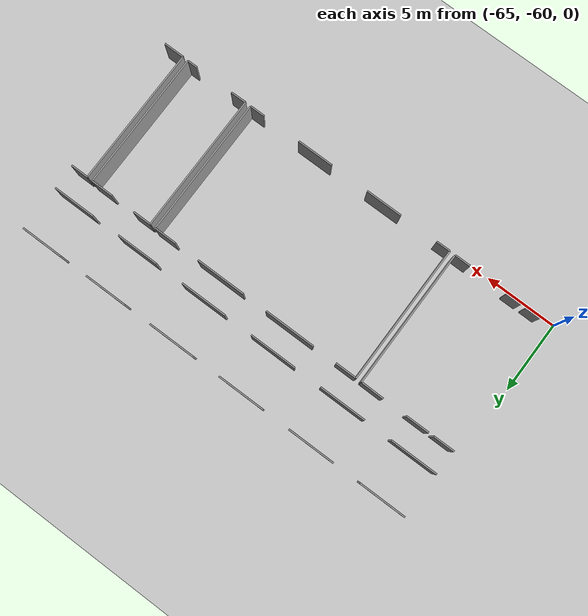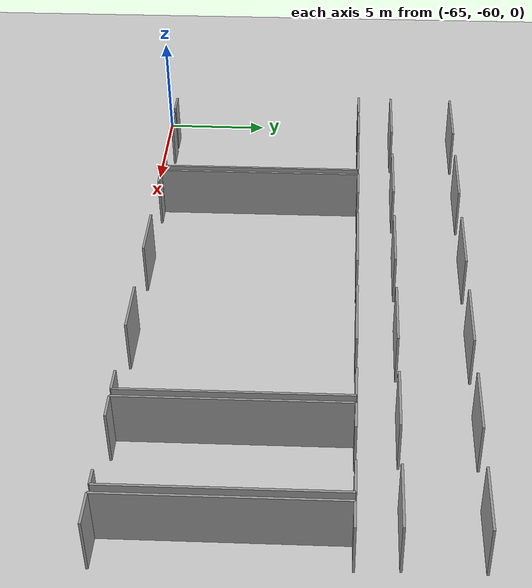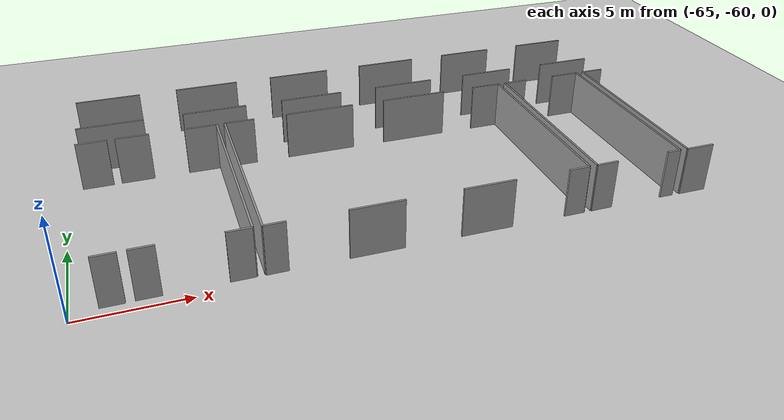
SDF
<sdf version="1.6">
 <world name="default">
  <model name="ground_plane">
   <static>1</static>
   <link name="link">
    <collision name="collision">
     <geometry><plane><normal>0 0 1</normal><size>100 100</size></plane></geometry>
     <surface><friction><ode><mu>100</mu><mu2>50</mu2></ode></friction></surface>
    </collision>
    <visual name="visual">
     <cast_shadows>0</cast_shadows>
     <geometry><plane><normal>0 0 1</normal><size>100 100</size></plane></geometry>
     <material>
      <script><uri>file://media/materials/scripts/gazebo.material</uri><name>Gazebo/Grey</name></script>
     </material>
    </visual>
   </link>
  </model>
  <model name="0510045922_A-40">
   <static>1</static>
   <link name="Wall_1092">
    <collision name="Wall_1092_Collision">
     <geometry><box><size>9.61809747728 0.1 2.5</size></box></geometry>
     <pose>4.80904873864 0 1.25 0 0 0</pose>
    </collision>
    <visual name="Wall_1092_Visual">
     <pose>4.80904873864 0 1.25 0 0 0</pose>
     <geometry><box><size>9.61809747728 0.1 2.5</size></box></geometry>
     <material>
      <script><uri>file://media/materials/scripts/gazebo.material</uri><name>Gazebo/Grey</name></script>
      <ambient>1 1 1 1</ambient>
     </material>
    </visual>
    <pose>97.623486052 -160.624108788 0 0 0 1.57079632679</pose>
   </link>
   <link name="Wall_1093">
    <collision name="Wall_1093_Collision">
     <geometry><box><size>1.2225964288 0.1 2.5</size></box></geometry>
     <pose>0.611298214399 0 1.25 0 0 0</pose>
    </collision>
    <visual name="Wall_1093_Visual">
     <pose>0.611298214399 0 1.25 0 0 0</pose>
     <geometry><box><size>1.2225964288 0.1 2.5</size></box></geometry>
     <material>
      <script><uri>file://media/materials/scripts/gazebo.material</uri><name>Gazebo/Grey</name></script>
      <ambient>1 1 1 1</ambient>
     </material>
    </visual>
    <pose>97.623486052 -151.006011311 0 0 0 0.0</pose>
   </link>
   <link name="Wall_1099">
    <collision name="Wall_1099_Collision">
     <geometry><box><size>1.43153223151 0.1 2.5</size></box></geometry>
     <pose>0.715766115755 0 1.25 0 0 0</pose>
    </collision>
    <visual name="Wall_1099_Visual">
     <pose>0.715766115755 0 1.25 0 0 0</pose>
     <geometry><box><size>1.43153223151 0.1 2.5</size></box></geometry>
     <material>
      <script><uri>file://media/materials/scripts/gazebo.material</uri><name>Gazebo/Grey</name></script>
      <ambient>1 1 1 1</ambient>
     </material>
    </visual>
    <pose>99.0550168393 -160.622075364 0 0 0 -3.1401722</pose>
   </link>
   <link name="Wall_1100">
    <collision name="Wall_1100_Collision">
     <geometry><box><size>9.62216432611 0.1 2.5</size></box></geometry>
     <pose>4.81108216306 0 1.25 0 0 0</pose>
    </collision>
    <visual name="Wall_1100_Visual">
     <pose>4.81108216306 0 1.25 0 0 0</pose>
     <geometry><box><size>9.62216432611 0.1 2.5</size></box></geometry>
     <material>
      <script><uri>file://media/materials/scripts/gazebo.material</uri><name>Gazebo/Grey</name></script>
      <ambient>1 1 1 1</ambient>
     </material>
    </visual>
    <pose>92.7208997903 -160.619025227 0 0 0 1.57079632679</pose>
   </link>
   <link name="Wall_1101">
    <collision name="Wall_1101_Collision">
     <geometry><box><size>1.28054902459 0.1 2.5</size></box></geometry>
     <pose>0.640274512296 0 1.25 0 0 0</pose>
    </collision>
    <visual name="Wall_1101_Visual">
     <pose>0.640274512296 0 1.25 0 0 0</pose>
     <geometry><box><size>1.28054902459 0.1 2.5</size></box></geometry>
     <material>
      <script><uri>file://media/materials/scripts/gazebo.material</uri><name>Gazebo/Grey</name></script>
      <ambient>1 1 1 1</ambient>
     </material>
    </visual>
    <pose>92.7208997903 -150.996860901 0 0 0 0.0</pose>
   </link>
   <link name="Wall_1102">
    <collision name="Wall_1102_Collision">
     <geometry><box><size>1.54387748618 0.1 2.5</size></box></geometry>
     <pose>0.77193874309 0 1.25 0 0 0</pose>
    </collision>
    <visual name="Wall_1102_Visual">
     <pose>0.77193874309 0 1.25 0 0 0</pose>
     <geometry><box><size>1.54387748618 0.1 2.5</size></box></geometry>
     <material>
      <script><uri>file://media/materials/scripts/gazebo.material</uri><name>Gazebo/Grey</name></script>
      <ambient>1 1 1 1</ambient>
     </material>
    </visual>
    <pose>95.6828366271 -150.996860901 0 0 0 0.0</pose>
   </link>
   <link name="Wall_1103">
    <collision name="Wall_1103_Collision">
     <geometry><box><size>9.6064052869 0.1 2.5</size></box></geometry>
     <pose>4.80320264345 0 1.25 0 0 0</pose>
    </collision>
    <visual name="Wall_1103_Visual">
     <pose>4.80320264345 0 1.25 0 0 0</pose>
     <geometry><box><size>9.6064052869 0.1 2.5</size></box></geometry>
     <material>
      <script><uri>file://media/materials/scripts/gazebo.material</uri><name>Gazebo/Grey</name></script>
      <ambient>1 1 1 1</ambient>
     </material>
    </visual>
    <pose>97.2267141132 -150.996860901 0 0 0 -1.57079632679</pose>
   </link>
   <link name="Wall_1104">
    <collision name="Wall_1104_Collision">
     <geometry><box><size>0.695685327572 0.1 2.5</size></box></geometry>
     <pose>0.347842663786 0 1.25 0 0 0</pose>
    </collision>
    <visual name="Wall_1104_Visual">
     <pose>0.347842663786 0 1.25 0 0 0</pose>
     <geometry><box><size>0.695685327572 0.1 2.5</size></box></geometry>
     <material>
      <script><uri>file://media/materials/scripts/gazebo.material</uri><name>Gazebo/Grey</name></script>
      <ambient>1 1 1 1</ambient>
     </material>
    </visual>
    <pose>97.2267141132 -160.603266188 0 0 0 3.14159265359</pose>
   </link>
   <link name="Wall_1105">
    <collision name="Wall_1105_Collision">
     <geometry><box><size>1.10044963072 0.1 2.5</size></box></geometry>
     <pose>0.550224815362 0 1.25 0 0 0</pose>
    </collision>
    <visual name="Wall_1105_Visual">
     <pose>0.550224815362 0 1.25 0 0 0</pose>
     <geometry><box><size>1.10044963072 0.1 2.5</size></box></geometry>
     <material>
      <script><uri>file://media/materials/scripts/gazebo.material</uri><name>Gazebo/Grey</name></script>
      <ambient>1 1 1 1</ambient>
     </material>
    </visual>
    <pose>93.8212365762 -160.603266188 0 0 0 -3.12727161839</pose>
   </link>
   <link name="Wall_1106">
    <collision name="Wall_1106_Collision">
     <geometry><box><size>9.63156891402 0.1 2.5</size></box></geometry>
     <pose>4.81578445701 0 1.25 0 0 0</pose>
    </collision>
    <visual name="Wall_1106_Visual">
     <pose>4.81578445701 0 1.25 0 0 0</pose>
     <geometry><box><size>9.63156891402 0.1 2.5</size></box></geometry>
     <material>
      <script><uri>file://media/materials/scripts/gazebo.material</uri><name>Gazebo/Grey</name></script>
      <ambient>1 1 1 1</ambient>
     </material>
    </visual>
    <pose>77.1130965241 -160.622075364 0 0 0 1.57079632679</pose>
   </link>
   <link name="Wall_1107">
    <collision name="Wall_1107_Collision">
     <geometry><box><size>1.49456694414 0.1 2.5</size></box></geometry>
     <pose>0.747283472072 0 1.25 0 0 0</pose>
    </collision>
    <visual name="Wall_1107_Visual">
     <pose>0.747283472072 0 1.25 0 0 0</pose>
     <geometry><box><size>1.49456694414 0.1 2.5</size></box></geometry>
     <material>
      <script><uri>file://media/materials/scripts/gazebo.material</uri><name>Gazebo/Grey</name></script>
      <ambient>1 1 1 1</ambient>
     </material>
    </visual>
    <pose>77.1130965241 -150.99050645 0 0 0 0.0</pose>
   </link>
   <link name="Wall_1108">
    <collision name="Wall_1108_Collision">
     <geometry><box><size>3.57069327064 0.1 2.5</size></box></geometry>
     <pose>1.78534663532 0 1.25 0 0 0</pose>
    </collision>
    <visual name="Wall_1108_Visual">
     <pose>1.78534663532 0 1.25 0 0 0</pose>
     <geometry><box><size>3.57069327064 0.1 2.5</size></box></geometry>
     <material>
      <script><uri>file://media/materials/scripts/gazebo.material</uri><name>Gazebo/Grey</name></script>
      <ambient>1 1 1 1</ambient>
     </material>
    </visual>
    <pose>80.2903221707 -150.99050645 0 0 0 0.0</pose>
   </link>
   <link name="Wall_1109">
    <collision name="Wall_1109_Collision">
     <geometry><box><size>3.45910910593 0.1 2.5</size></box></geometry>
     <pose>1.72955455296 0 1.25 0 0 0</pose>
    </collision>
    <visual name="Wall_1109_Visual">
     <pose>1.72955455296 0 1.25 0 0 0</pose>
     <geometry><box><size>3.45910910593 0.1 2.5</size></box></geometry>
     <material>
      <script><uri>file://media/materials/scripts/gazebo.material</uri><name>Gazebo/Grey</name></script>
      <ambient>1 1 1 1</ambient>
     </material>
    </visual>
    <pose>85.5762089344 -150.99050645 0 0 0 0.0</pose>
   </link>
   <link name="Wall_1110">
    <collision name="Wall_1110_Collision">
     <geometry><box><size>1.55175700578 0.1 2.5</size></box></geometry>
     <pose>0.775878502891 0 1.25 0 0 0</pose>
    </collision>
    <visual name="Wall_1110_Visual">
     <pose>0.775878502891 0 1.25 0 0 0</pose>
     <geometry><box><size>1.55175700578 0.1 2.5</size></box></geometry>
     <material>
      <script><uri>file://media/materials/scripts/gazebo.material</uri><name>Gazebo/Grey</name></script>
      <ambient>1 1 1 1</ambient>
     </material>
    </visual>
    <pose>90.7721166677 -150.99050645 0 0 0 0.0</pose>
   </link>
   <link name="Wall_1111">
    <collision name="Wall_1111_Collision">
     <geometry><box><size>9.62368939442 0.1 2.5</size></box></geometry>
     <pose>4.81184469721 0 1.25 0 0 0</pose>
    </collision>
    <visual name="Wall_1111_Visual">
     <pose>4.81184469721 0 1.25 0 0 0</pose>
     <geometry><box><size>9.62368939442 0.1 2.5</size></box></geometry>
     <material>
      <script><uri>file://media/materials/scripts/gazebo.material</uri><name>Gazebo/Grey</name></script>
      <ambient>1 1 1 1</ambient>
     </material>
    </visual>
    <pose>92.3238736735 -150.99050645 0 0 0 -1.57079632679</pose>
   </link>
   <link name="Wall_1112">
    <collision name="Wall_1112_Collision">
     <geometry><box><size>1.02942110949 0.1 2.5</size></box></geometry>
     <pose>0.514710554744 0 1.25 0 0 0</pose>
    </collision>
    <visual name="Wall_1112_Visual">
     <pose>0.514710554744 0 1.25 0 0 0</pose>
     <geometry><box><size>1.02942110949 0.1 2.5</size></box></geometry>
     <material>
      <script><uri>file://media/materials/scripts/gazebo.material</uri><name>Gazebo/Grey</name></script>
      <ambient>1 1 1 1</ambient>
     </material>
    </visual>
    <pose>92.3238736735 -160.614195844 0 0 0 3.14159265359</pose>
   </link>
   <link name="Wall_1113">
    <collision name="Wall_1113_Collision">
     <geometry><box><size>2.5341551757 0.1 2.5</size></box></geometry>
     <pose>1.26707758785 0 1.25 0 0 0</pose>
    </collision>
    <visual name="Wall_1113_Visual">
     <pose>1.26707758785 0 1.25 0 0 0</pose>
     <geometry><box><size>2.5341551757 0.1 2.5</size></box></geometry>
     <material>
      <script><uri>file://media/materials/scripts/gazebo.material</uri><name>Gazebo/Grey</name></script>
      <ambient>1 1 1 1</ambient>
     </material>
    </visual>
    <pose>88.5938107644 -160.614195844 0 0 0 3.14159265359</pose>
   </link>
   <link name="Wall_1114">
    <collision name="Wall_1114_Collision">
     <geometry><box><size>2.55093092711 0.1 2.5</size></box></geometry>
     <pose>1.27546546356 0 1.25 0 0 0</pose>
    </collision>
    <visual name="Wall_1114_Visual">
     <pose>1.27546546356 0 1.25 0 0 0</pose>
     <geometry><box><size>2.55093092711 0.1 2.5</size></box></geometry>
     <material>
      <script><uri>file://media/materials/scripts/gazebo.material</uri><name>Gazebo/Grey</name></script>
      <ambient>1 1 1 1</ambient>
     </material>
    </visual>
    <pose>83.3508800915 -160.614195844 0 0 0 3.14159265359</pose>
   </link>
   <link name="Wall_1115">
    <collision name="Wall_1115_Collision">
     <geometry><box><size>0.994629927911 0.1 2.5</size></box></geometry>
     <pose>0.497314963955 0 1.25 0 0 0</pose>
    </collision>
    <visual name="Wall_1115_Visual">
     <pose>0.497314963955 0 1.25 0 0 0</pose>
     <geometry><box><size>0.994629927911 0.1 2.5</size></box></geometry>
     <material>
      <script><uri>file://media/materials/scripts/gazebo.material</uri><name>Gazebo/Grey</name></script>
      <ambient>1 1 1 1</ambient>
     </material>
    </visual>
    <pose>78.1076952405 -160.614195844 0 0 0 -3.13367050908</pose>
   </link>
   <link name="Wall_1116">
    <collision name="Wall_1116_Collision">
     <geometry><box><size>9.60665946496 0.1 2.5</size></box></geometry>
     <pose>4.80332973248 0 1.25 0 0 0</pose>
    </collision>
    <visual name="Wall_1116_Visual">
     <pose>4.80332973248 0 1.25 0 0 0</pose>
     <geometry><box><size>9.60665946496 0.1 2.5</size></box></geometry>
     <material>
      <script><uri>file://media/materials/scripts/gazebo.material</uri><name>Gazebo/Grey</name></script>
      <ambient>1 1 1 1</ambient>
     </material>
    </visual>
    <pose>76.7168329415 -151.00219864 0 0 0 -1.57079632679</pose>
   </link>
   <link name="Wall_1117">
    <collision name="Wall_1117_Collision">
     <geometry><box><size>1.11609582513 0.1 2.5</size></box></geometry>
     <pose>0.558047912563 0 1.25 0 0 0</pose>
    </collision>
    <visual name="Wall_1117_Visual">
     <pose>0.558047912563 0 1.25 0 0 0</pose>
     <geometry><box><size>1.11609582513 0.1 2.5</size></box></geometry>
     <material>
      <script><uri>file://media/materials/scripts/gazebo.material</uri><name>Gazebo/Grey</name></script>
      <ambient>1 1 1 1</ambient>
     </material>
    </visual>
    <pose>76.7168329415 -160.608858105 0 0 0 3.14159265359</pose>
   </link>
   <link name="Wall_1118">
    <collision name="Wall_1118_Collision">
     <geometry><box><size>1.08711952723 0.1 2.5</size></box></geometry>
     <pose>0.543559763614 0 1.25 0 0 0</pose>
    </collision>
    <visual name="Wall_1118_Visual">
     <pose>0.543559763614 0 1.25 0 0 0</pose>
     <geometry><box><size>1.08711952723 0.1 2.5</size></box></geometry>
     <material>
      <script><uri>file://media/materials/scripts/gazebo.material</uri><name>Gazebo/Grey</name></script>
      <ambient>1 1 1 1</ambient>
     </material>
    </visual>
    <pose>72.847226282 -160.608858105 0 0 0 3.14159265359</pose>
   </link>
   <link name="Wall_1119">
    <collision name="Wall_1119_Collision">
     <geometry><box><size>1.62089343585 0.1 2.5</size></box></geometry>
     <pose>0.810446717926 0 1.25 0 0 0</pose>
    </collision>
    <visual name="Wall_1119_Visual">
     <pose>0.810446717926 0 1.25 0 0 0</pose>
     <geometry><box><size>1.62089343585 0.1 2.5</size></box></geometry>
     <material>
      <script><uri>file://media/materials/scripts/gazebo.material</uri><name>Gazebo/Grey</name></script>
      <ambient>1 1 1 1</ambient>
     </material>
    </visual>
    <pose>71.7601067548 -150.984151998 0 0 0 0.0</pose>
   </link>
   <link name="Wall_1120">
    <collision name="Wall_1120_Collision">
     <geometry><box><size>1.62073973395 0.1 2.5</size></box></geometry>
     <pose>0.810369866974 0 1.25 0 0 0</pose>
    </collision>
    <visual name="Wall_1120_Visual">
     <pose>0.810369866974 0 1.25 0 0 0</pose>
     <geometry><box><size>1.62073973395 0.1 2.5</size></box></geometry>
     <material>
      <script><uri>file://media/materials/scripts/gazebo.material</uri><name>Gazebo/Grey</name></script>
      <ambient>1 1 1 1</ambient>
     </material>
    </visual>
    <pose>75.0961936837 -150.984151998 0 0 0 -0.0111350479239</pose>
   </link>
   <link name="Wall_1123">
    <collision name="Wall_1123_Collision">
     <geometry><box><size>1.47906208299 0.1 2.5</size></box></geometry>
     <pose>0.739531041495 0 1.25 0 0 0</pose>
    </collision>
    <visual name="Wall_1123_Visual">
     <pose>0.739531041495 0 1.25 0 0 0</pose>
     <geometry><box><size>1.47906208299 0.1 2.5</size></box></geometry>
     <material>
      <script><uri>file://media/materials/scripts/gazebo.material</uri><name>Gazebo/Grey</name></script>
      <ambient>1 1 1 1</ambient>
     </material>
    </visual>
    <pose>69.9066404016 -150.993302408 0 0 0 0.0</pose>
   </link>
   <link name="Wall_1124">
    <collision name="Wall_1124_Collision">
     <geometry><box><size>1.04162165597 0.1 2.5</size></box></geometry>
     <pose>0.520810827985 0 1.25 0 0 0</pose>
    </collision>
    <visual name="Wall_1124_Visual">
     <pose>0.520810827985 0 1.25 0 0 0</pose>
     <geometry><box><size>1.04162165597 0.1 2.5</size></box></geometry>
     <material>
      <script><uri>file://media/materials/scripts/gazebo.material</uri><name>Gazebo/Grey</name></script>
      <ambient>1 1 1 1</ambient>
     </material>
    </visual>
    <pose>71.3857024846 -160.626142213 0 0 0 3.14159265359</pose>
   </link>
   <link name="Wall_1148">
    <collision name="Wall_1148_Collision">
     <geometry><box><size>3.27737179895 0.1 2.5</size></box></geometry>
     <pose>1.63868589947 0 1.25 0 0 0</pose>
    </collision>
    <visual name="Wall_1148_Visual">
     <pose>1.63868589947 0 1.25 0 0 0</pose>
     <geometry><box><size>3.27737179895 0.1 2.5</size></box></geometry>
     <material>
      <script><uri>file://media/materials/scripts/gazebo.material</uri><name>Gazebo/Grey</name></script>
      <ambient>1 1 1 1</ambient>
     </material>
    </visual>
    <pose>70.007040732 -146.16722374 0 0 0 0.0</pose>
   </link>
   <link name="Wall_1149">
    <collision name="Wall_1149_Collision">
     <geometry><box><size>3.30914405541 0.1 2.5</size></box></geometry>
     <pose>1.65457202771 0 1.25 0 0 0</pose>
    </collision>
    <visual name="Wall_1149_Visual">
     <pose>1.65457202771 0 1.25 0 0 0</pose>
     <geometry><box><size>3.30914405541 0.1 2.5</size></box></geometry>
     <material>
      <script><uri>file://media/materials/scripts/gazebo.material</uri><name>Gazebo/Grey</name></script>
      <ambient>1 1 1 1</ambient>
     </material>
    </visual>
    <pose>75.2237910656 -146.16722374 0 0 0 0.0</pose>
   </link>
   <link name="Wall_1150">
    <collision name="Wall_1150_Collision">
     <geometry><box><size>3.3002478236 0.1 2.5</size></box></geometry>
     <pose>1.6501239118 0 1.25 0 0 0</pose>
    </collision>
    <visual name="Wall_1150_Visual">
     <pose>1.6501239118 0 1.25 0 0 0</pose>
     <geometry><box><size>3.3002478236 0.1 2.5</size></box></geometry>
     <material>
      <script><uri>file://media/materials/scripts/gazebo.material</uri><name>Gazebo/Grey</name></script>
      <ambient>1 1 1 1</ambient>
     </material>
    </visual>
    <pose>80.4468958505 -146.16722374 0 0 0 0.0</pose>
   </link>
   <link name="Wall_1151">
    <collision name="Wall_1151_Collision">
     <geometry><box><size>3.26542543051 0.1 2.5</size></box></geometry>
     <pose>1.63271271526 0 1.25 0 0 0</pose>
    </collision>
    <visual name="Wall_1151_Visual">
     <pose>1.63271271526 0 1.25 0 0 0</pose>
     <geometry><box><size>3.26542543051 0.1 2.5</size></box></geometry>
     <material>
      <script><uri>file://media/materials/scripts/gazebo.material</uri><name>Gazebo/Grey</name></script>
      <ambient>1 1 1 1</ambient>
     </material>
    </visual>
    <pose>85.7091440554 -146.16722374 0 0 0 0.0</pose>
   </link>
   <link name="Wall_1152">
    <collision name="Wall_1152_Collision">
     <geometry><box><size>2.98659210777 0.1 2.5</size></box></geometry>
     <pose>1.49329605389 0 1.25 0 0 0</pose>
    </collision>
    <visual name="Wall_1152_Visual">
     <pose>1.49329605389 0 1.25 0 0 0</pose>
     <geometry><box><size>2.98659210777 0.1 2.5</size></box></geometry>
     <material>
      <script><uri>file://media/materials/scripts/gazebo.material</uri><name>Gazebo/Grey</name></script>
      <ambient>1 1 1 1</ambient>
     </material>
    </visual>
    <pose>90.8824299422 -146.16722374 0 0 0 0.0</pose>
   </link>
   <link name="Wall_1153">
    <collision name="Wall_1153_Collision">
     <geometry><box><size>2.93931499015 0.1 2.5</size></box></geometry>
     <pose>1.46965749508 0 1.25 0 0 0</pose>
    </collision>
    <visual name="Wall_1153_Visual">
     <pose>1.46965749508 0 1.25 0 0 0</pose>
     <geometry><box><size>2.93931499015 0.1 2.5</size></box></geometry>
     <material>
      <script><uri>file://media/materials/scripts/gazebo.material</uri><name>Gazebo/Grey</name></script>
      <ambient>1 1 1 1</ambient>
     </material>
    </visual>
    <pose>95.8366143484 -146.16722374 0 0 0 0.0</pose>
   </link>
   <link name="Wall_1164">
    <collision name="Wall_1164_Collision">
     <geometry><box><size>2.94821122196 0.1 2.5</size></box></geometry>
     <pose>1.47410561098 0 1.25 0 0 0</pose>
    </collision>
    <visual name="Wall_1164_Visual">
     <pose>1.47410561098 0 1.25 0 0 0</pose>
     <geometry><box><size>2.94821122196 0.1 2.5</size></box></geometry>
     <material>
      <script><uri>file://media/materials/scripts/gazebo.material</uri><name>Gazebo/Grey</name></script>
      <ambient>1 1 1 1</ambient>
     </material>
    </visual>
    <pose>98.7693207092 -149.293867955 0 0 0 3.14159265359</pose>
   </link>
   <link name="Wall_1165">
    <collision name="Wall_1165_Collision">
     <geometry><box><size>2.93067293639 0.1 2.5</size></box></geometry>
     <pose>1.4653364682 0 1.25 0 0 0</pose>
    </collision>
    <visual name="Wall_1165_Visual">
     <pose>1.4653364682 0 1.25 0 0 0</pose>
     <geometry><box><size>2.93067293639 0.1 2.5</size></box></geometry>
     <material>
      <script><uri>file://media/materials/scripts/gazebo.material</uri><name>Gazebo/Grey</name></script>
      <ambient>1 1 1 1</ambient>
     </material>
    </visual>
    <pose>93.8443667789 -149.293867955 0 0 0 3.14159265359</pose>
   </link>
   <link name="Wall_1166">
    <collision name="Wall_1166_Collision">
     <geometry><box><size>3.26593378662 0.1 2.5</size></box></geometry>
     <pose>1.63296689331 0 1.25 0 0 0</pose>
    </collision>
    <visual name="Wall_1166_Visual">
     <pose>1.63296689331 0 1.25 0 0 0</pose>
     <geometry><box><size>3.26593378662 0.1 2.5</size></box></geometry>
     <material>
      <script><uri>file://media/materials/scripts/gazebo.material</uri><name>Gazebo/Grey</name></script>
      <ambient>1 1 1 1</ambient>
     </material>
    </visual>
    <pose>88.9425430514 -149.293867955 0 0 0 3.14159265359</pose>
   </link>
   <link name="Wall_1167">
    <collision name="Wall_1167_Collision">
     <geometry><box><size>3.2860138527 0.1 2.5</size></box></geometry>
     <pose>1.64300692635 0 1.25 0 0 0</pose>
    </collision>
    <visual name="Wall_1167_Visual">
     <pose>1.64300692635 0 1.25 0 0 0</pose>
     <geometry><box><size>3.2860138527 0.1 2.5</size></box></geometry>
     <material>
      <script><uri>file://media/materials/scripts/gazebo.material</uri><name>Gazebo/Grey</name></script>
      <ambient>1 1 1 1</ambient>
     </material>
    </visual>
    <pose>83.6975789541 -149.293867955 0 0 0 3.14159265359</pose>
   </link>
   <link name="Wall_1168">
    <collision name="Wall_1168_Collision">
     <geometry><box><size>3.27838851115 0.1 2.5</size></box></geometry>
     <pose>1.63919425558 0 1.25 0 0 0</pose>
    </collision>
    <visual name="Wall_1168_Visual">
     <pose>1.63919425558 0 1.25 0 0 0</pose>
     <geometry><box><size>3.27838851115 0.1 2.5</size></box></geometry>
     <material>
      <script><uri>file://media/materials/scripts/gazebo.material</uri><name>Gazebo/Grey</name></script>
      <ambient>1 1 1 1</ambient>
     </material>
    </visual>
    <pose>78.5029421109 -149.293867955 0 0 0 3.14159265359</pose>
   </link>
   <link name="Wall_1169">
    <collision name="Wall_1169_Collision">
     <geometry><box><size>3.30101035776 0.1 2.5</size></box></geometry>
     <pose>1.65050517888 0 1.25 0 0 0</pose>
    </collision>
    <visual name="Wall_1169_Visual">
     <pose>1.65050517888 0 1.25 0 0 0</pose>
     <geometry><box><size>3.30101035776 0.1 2.5</size></box></geometry>
     <material>
      <script><uri>file://media/materials/scripts/gazebo.material</uri><name>Gazebo/Grey</name></script>
      <ambient>1 1 1 1</ambient>
     </material>
    </visual>
    <pose>73.2582321917 -149.293867955 0 0 0 3.14159265359</pose>
   </link>
   <pose>-134.15 101.210036856 0 0 0 0</pose>
  </model>
 </world>
</sdf>
